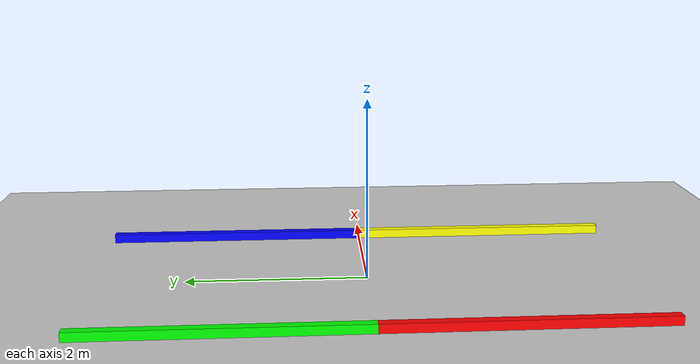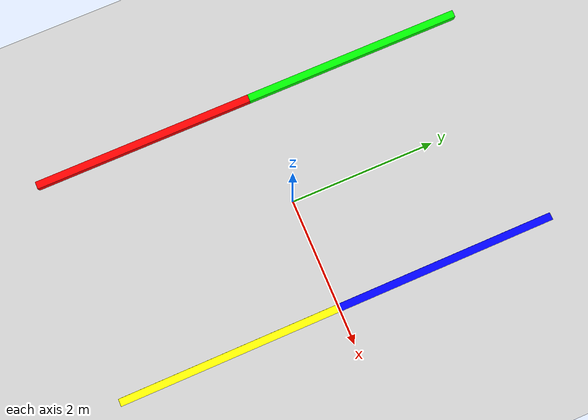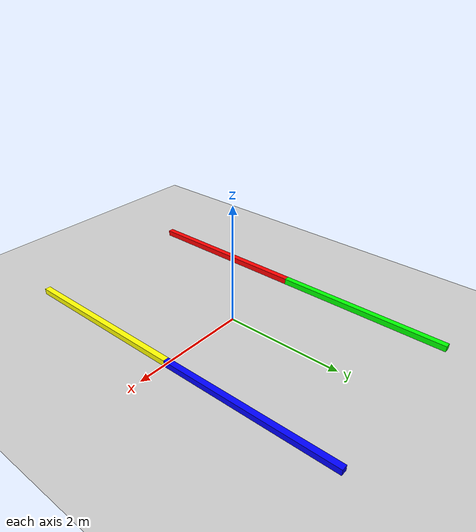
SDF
<?xml version="1.0" ?>
<sdf version="1.6">
  <world name="default">
    <include>
      <uri>model://ground_plane</uri>
    </include>
    <include>
      <uri>model://sun</uri>
    </include>

    <!-- Define the boundaries -->
    <model name="boundary1">
      <static>true</static>
      <link name="link">
        <visual name="visual">
          <geometry>
            <box>
              <size>0.1 3 0.1</size>
            </box>
          </geometry>
          <material>
            <ambient>1 0 0 1</ambient>
          </material>
        </visual>
        <pose>-1.5 -1.5 0.05 0 0 0</pose>
      </link>
    </model>

    <model name="boundary2">
      <static>true</static>
      <link name="link">
        <visual name="visual">
          <geometry>
            <box>
              <size>0.1 3 0.1</size>
            </box>
          </geometry>
          <material>
            <ambient>0 1 0 1</ambient>
          </material>
        </visual>
        <pose>-1.5 1.5 0.05 0 0 0</pose>
      </link>
    </model>

    <model name="boundary3">
      <static>true</static>
      <link name="link">
        <visual name="visual">
          <geometry>
            <box>
              <size>0.1 3 0.1</size>
            </box>
          </geometry>
          <material>
            <ambient>0 0 1 1</ambient>
          </material>
        </visual>
        <pose>1.5 1.5 0.05 0 0 0</pose>
      </link>
    </model>

    <model name="boundary4">
      <static>true</static>
      <link name="link">
        <visual name="visual">
          <geometry>
            <box>
              <size>0.1 3 0.1</size>
            </box>
          </geometry>
          <material>
            <ambient>1 1 0 1</ambient>
          </material>
        </visual>
        <pose>1.5 -1.5 0.05 0 0 0</pose>
      </link>
    </model>

  </world>
</sdf>
